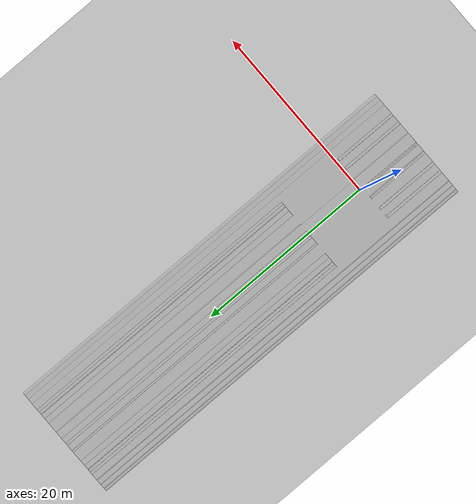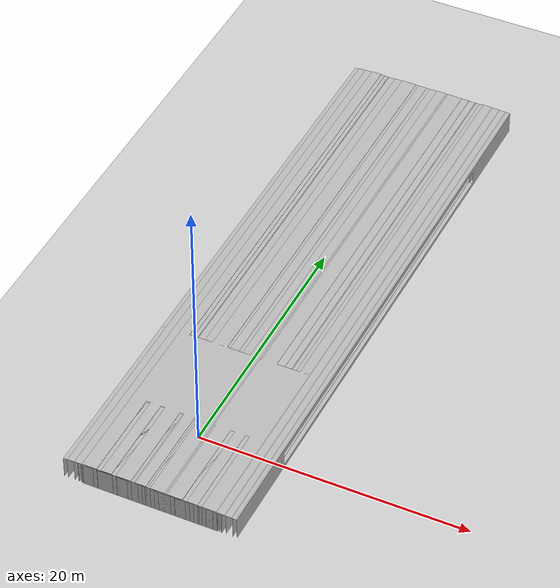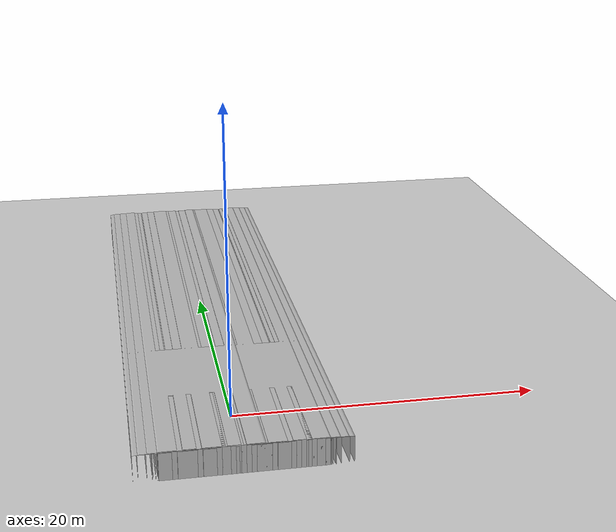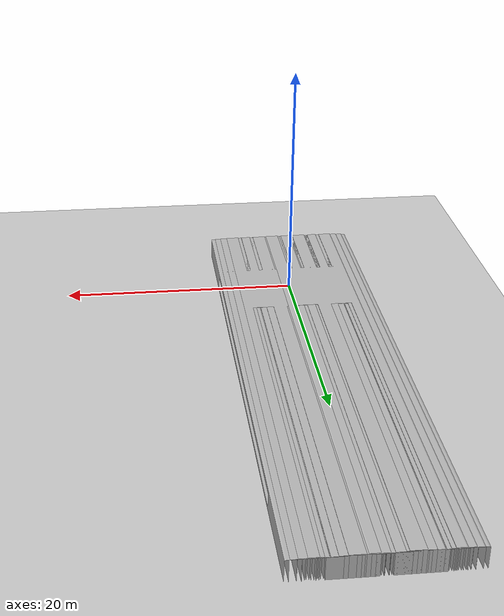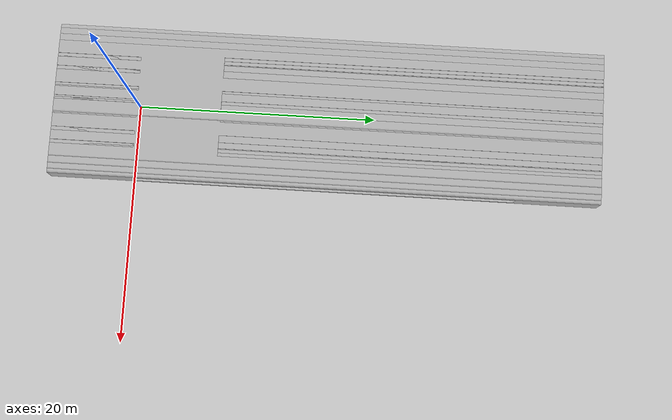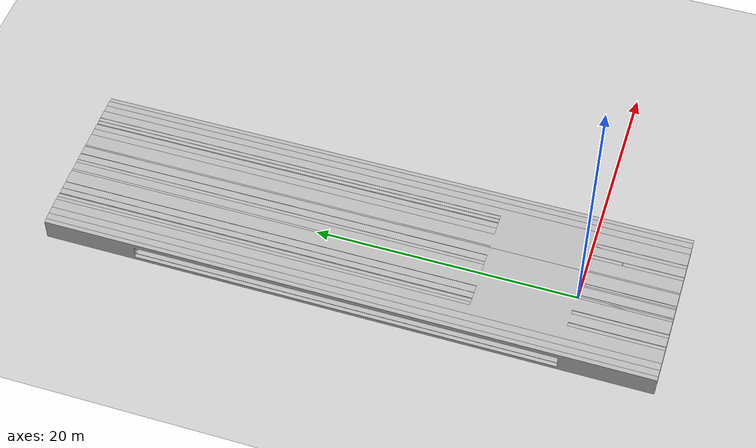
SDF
<?xml version="1.0" ?>
<sdf version="1.4">
  <world name="default">
    <physics type='ode'>
      <gravity>0 0 -9.81</gravity>
      <!-- max step size has to be a multiple of the desired task rate-->
      <max_step_size>0.001</max_step_size>
      <real_time_factor>1</real_time_factor>
    </physics>
    <!-- A global light source -->
    <include>
      <uri>model://sun</uri>
    </include>
    <!-- A ground plane -->
    <include>
      <uri>model://ground_plane</uri>
    </include>
    <include>
      <name>pallet</name>
      <uri>model://pallet25mm</uri>
      <pose>1 0 0 0 0 3.14</pose>
    </include>
    <include>
      <name>pallet</name>
      <uri>model://pallet25mm</uri>
      <pose>2 0 0 0 0 3.14</pose>
    </include>
    <include>
      <name>pallet</name>
      <uri>model://pallet25mm</uri>
      <pose>3.3 0 0 0 0 3.14</pose>
    </include>
    <include>
      <name>pallet</name>
      <uri>model://pallet25mm</uri>
      <pose>1.3 0 0.025 0 0 3.14</pose>
    </include>
    <include>
      <name>pallet</name>
      <uri>model://pallet25mm</uri>
      <pose>2.2 0 0.025 0 0 3.14</pose>
    </include>
    <include>
      <name>pallet</name>
      <uri>model://pallet25mm</uri>
      <pose>3 0 0.025 0 0 3.14</pose>
    </include>
    <include>
      <name>pallet</name>
      <uri>model://pallet25mm</uri>
      <pose>1.6 0 0.05 0 0 3.14</pose>
    </include>
    <include>
      <name>pallet</name>
      <uri>model://pallet25mm</uri>
      <pose>2.5 0 0.05 0 0 3.14</pose>
    </include>
    <include>
      <name>pallet</name>
      <uri>model://pallet25mm</uri>
      <pose>1.9 0 0.075 0 0 3.14</pose>
    </include>

  <include>
      <name>pallet</name>
      <uri>model://pallet25mm</uri>
      <pose>-1 0 0.01 0 0 3.14</pose>
    </include>
    <include>
      <name>pallet</name>
      <uri>model://pallet25mm</uri>
      <pose>-2 0 0.01 0 0 3.14</pose>
    </include>
    <include>
      <name>pallet</name>
      <uri>model://pallet25mm</uri>
      <pose>-3.3 0 0.01 0 0 3.14</pose>
    </include>
    <include>
      <name>pallet</name>
      <uri>model://pallet25mm</uri>
      <pose>-1.3 0 0.045 0 0 3.14</pose>
    </include>
    <include>
      <name>pallet</name>
      <uri>model://pallet25mm</uri>
      <pose>-2.2 0 0.045 0 0 3.14</pose>
    </include>
    <include>
      <name>pallet</name>
      <uri>model://pallet25mm</uri>
      <pose>-3 0 0.045 0 0 3.14</pose>
    </include>
    <include>
      <name>pallet</name>
      <uri>model://pallet25mm</uri>
      <pose>-1.6 0 0.07 0 0 3.14</pose>
    </include>
    <include>
      <name>pallet</name>
      <uri>model://pallet25mm</uri>
      <pose>-2.5 0 0.07 0 0 3.14</pose>
    </include>
    <include>
      <name>pallet</name>
      <uri>model://pallet25mm</uri>
      <pose>-1.9 0 0.105 0 0 3.14</pose>
    </include>
  </world>
</sdf>

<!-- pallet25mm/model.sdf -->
<sdf version="1.4">
	<model name="pallet145mm">
		<static>true</static>
		<link name="link">
			<pose>0 0 0.0125 0 0 0</pose>
			<collision name="collision">
				<geometry>
					<mesh>
						<uri>model://pallet25mm/mesh/pallet.dae</uri>
						<scale>0.787 32 0.28</scale>
					</mesh>
				</geometry>

			</collision>
			<visual name="visual">
				<geometry>
					<mesh>
						<uri>model://pallet25mm/mesh/pallet.dae</uri>
						<scale>0.787 32 0.28</scale>
					</mesh>
				</geometry>
			</visual>
		</link>
	</model>
</sdf>
